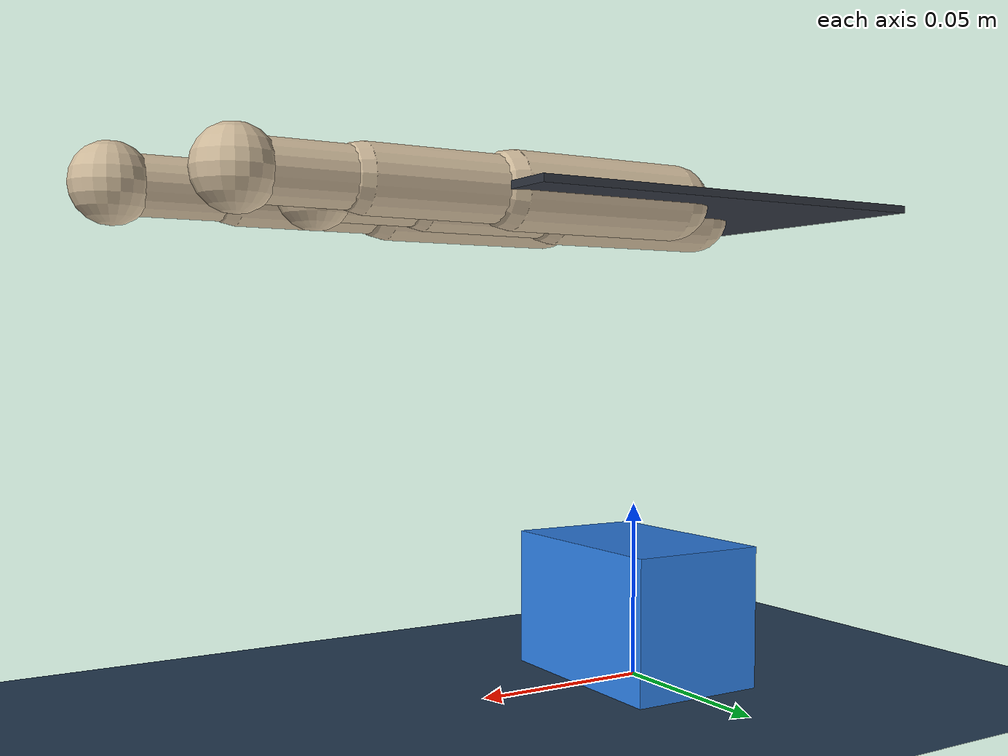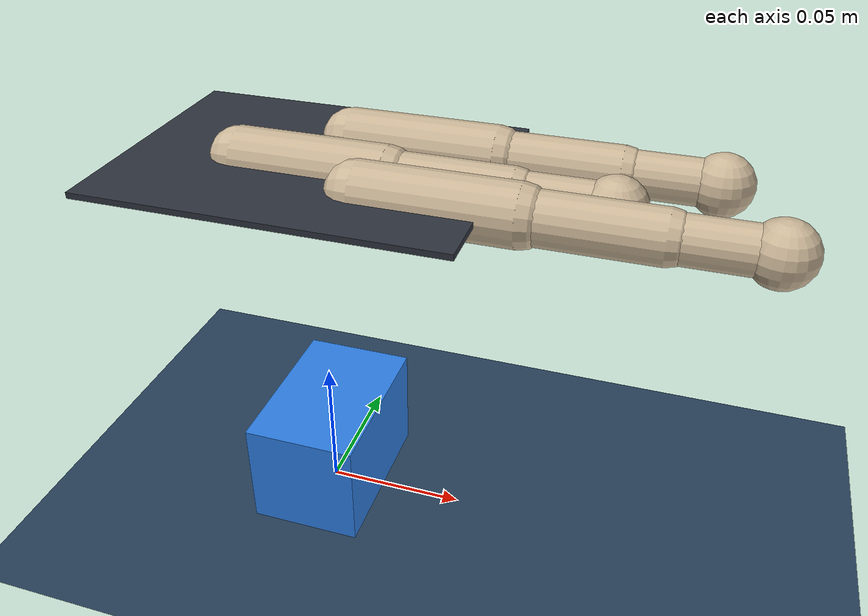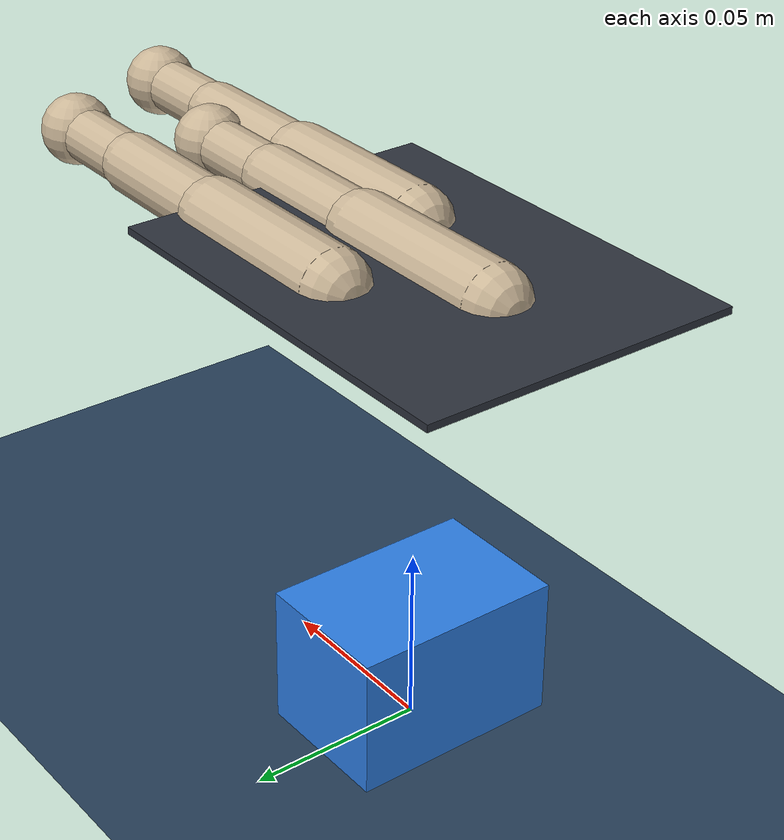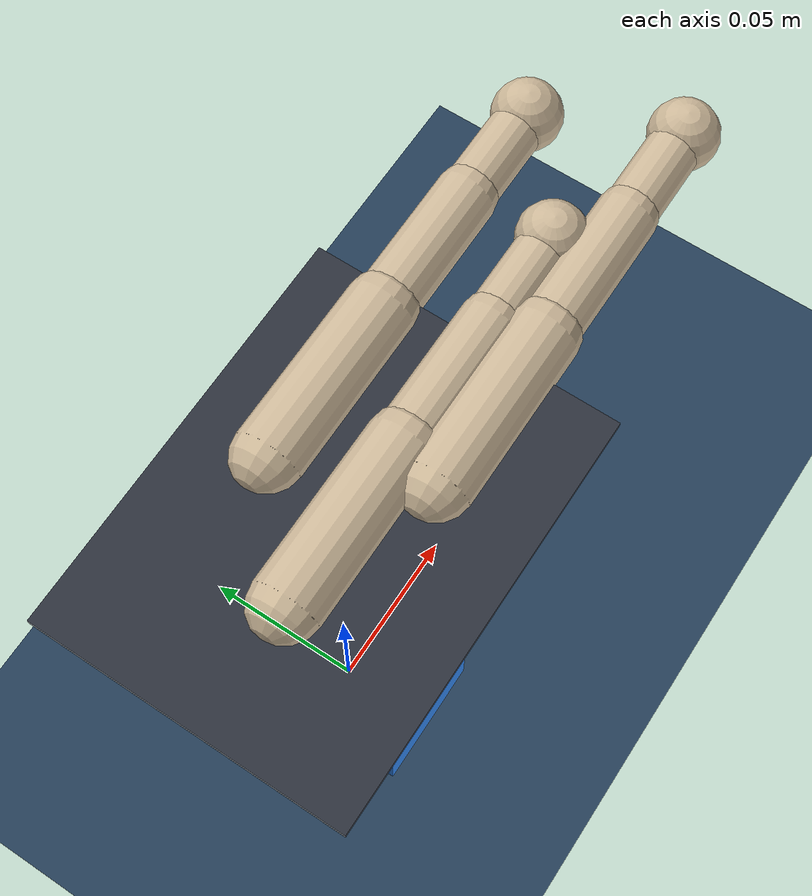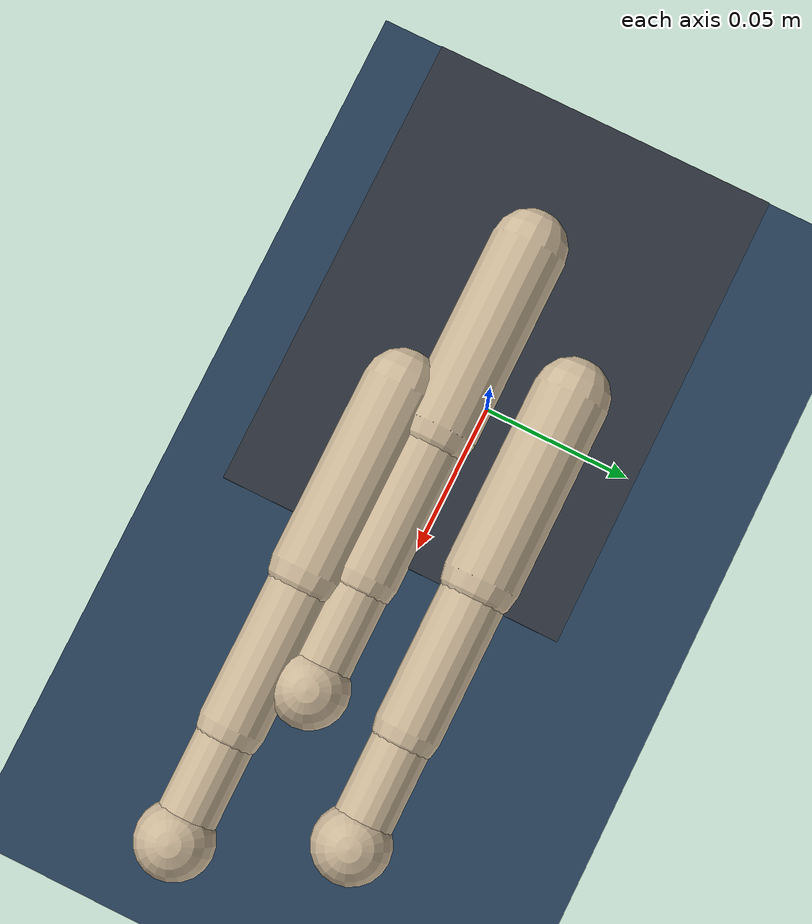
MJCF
<mujoco model="scene_prism2_tp0d0063p0d0247p0d0000_ip0d0049n0d0079p0d0000_mp0d0212p0d0139p0d0013">
  <compiler angle="radian" autolimits="true" />
  <option timestep="0.002" gravity="0 0 -9.81" integrator="implicitfast" />
  <visual>
    <headlight ambient=".4 .4 .4" diffuse=".8 .8 .8" specular="0.1 0.1 0.1" />
    <map znear=".01" />
    <quality shadowsize="2048" />
    <global elevation="-15" />
  </visual>
  <default>
    <geom friction="1.8 0.15 0.01" solref="0.006 1" solimp="0.97 0.995 0.0005" />
    <motor ctrlrange="-1 1" ctrllimited="true" />
    <default class="pose">
      <joint damping="2.0" armature="0.01" />
      <position kp="4000" kv="100" forcerange="-1000 1000" />
    </default>
    <default class="ctrl">
      <joint damping="0.5" armature="0.001" />
      <position kp="30" kv="0.5" gear="1" forcerange="-10 10" ctrlrange="-1 1" />
    </default>
  </default>
  <asset>
    <texture type="skybox" builtin="gradient" rgb1="0.3 0.5 0.7" rgb2="0 0 0" width="512" height="3072" />
    <texture type="2d" name="groundplane" builtin="checker" mark="edge" rgb1="0.2 0.3 0.4" rgb2="0.1 0.2 0.3" markrgb="0.8 0.8 0.8" width="300" height="300" />
    <material name="groundplane" texture="groundplane" texuniform="true" texrepeat="5 5" reflectance="0.2" />
    <texture name="grid" type="2d" builtin="checker" rgb1="0.15 0.15 0.15" rgb2="0.25 0.25 0.25" width="256" height="256" />
    <material name="table_mat" texture="grid" texrepeat="3 3" reflectance="0.2" />
    <material name="palm_mat" rgba="0.18 0.2 0.24 1" />
    <material name="finger_mat" rgba="0.8 0.72 0.6 1" />
    <material name="object_mat" rgba="0.18 0.5 0.9 1" />
  </asset>
  <worldbody>
    <light pos="0 0 1.5" dir="0 0 -1" directional="true" diffuse=".6 .6 .6" specular=".2 .2 .2" />
    <light pos="0.5 0.5 1.0" dir="-1 -1 -1" directional="true" diffuse=".4 .4 .4" specular=".1 .1 .1" />
    <geom name="floor" type="plane" size="1.5 1.5 0.1" material="groundplane" />
    <body name="cube" pos="0.000000 0.000000 0.020000">
      <freejoint />
      <geom type="box" size="0.020000 0.030000 0.020000" density="500" material="object_mat" friction="2.4 0.2 0.02" />
    </body>
    <body gravcomp="1" name="palm_pose" pos="0 0 0.134">
      <joint class="pose" name="palm_px" type="slide" axis="1 0 0" range="-0.20 0.20" />
      <joint class="pose" name="palm_py" type="slide" axis="0 1 0" range="-0.20 0.20" />
      <joint class="pose" name="palm_pz" type="slide" axis="0 0 1" range="-0.15 0.35" />
      <joint class="pose" name="palm_rx" type="hinge" axis="1 0 0" range="-1.57 1.57" />
      <joint class="pose" name="palm_ry" type="hinge" axis="0 1 0" range="-1.57 1.57" />
      <joint class="pose" name="palm_rz" type="hinge" axis="0 0 1" range="-3.14 3.14" />
      <geom type="box" size="0.06 0.045 0.001" material="palm_mat" />
      <body name="thumb_mount" pos="-0.023701 -0.003322 0">
        <inertial pos="0 0 0" mass="0.001" diaginertia="1e-6 1e-6 1e-6" />
        <body name="thumb_yaw_frame">
          <inertial pos="0 0 0" mass="0.001" diaginertia="1e-6 1e-6 1e-6" />
          <joint class="ctrl" name="thumb_yaw" type="hinge" axis="1 0 0" range="-1.1 1.1" />
          <body name="thumb_mcp_frame">
            <joint class="ctrl" name="thumb_mcp" type="hinge" axis="0 1 0" range="0 3.14" />
            <geom type="capsule" fromto="0 0 0 0.05 0 0" size="0.010" material="finger_mat" />
            <body name="thumb_len_frame" pos="0.05 0 0">
              <geom type="capsule" fromto="0 0 0 0.04 0 0" size="0.0085" material="finger_mat" />
              <body name="thumb_pip_frame" pos="0.04 0 0">
                <joint class="ctrl" name="thumb_pip" type="hinge" axis="0 1 0" range="-1.2 0.5" />
                <geom type="capsule" fromto="0 0 0 0.03 0 0" size="0.0075" material="finger_mat" />
                <body name="thumb_tip" pos="0.03 0 0">
                  <geom type="sphere" size="0.010" material="finger_mat" friction="2.4 0.2 0.02" />
                  <geom type="sphere" pos="0 0.004 0" size="0.005" material="finger_mat" friction="2.4 0.2 0.02" />
                  <geom type="sphere" pos="0 -0.004 0" size="0.005" material="finger_mat" friction="2.4 0.2 0.02" />
                </body>
              </body>
            </body>
          </body>
        </body>
      </body>
      <body name="index_mount" pos="0.004865 0.022101 0">
        <inertial pos="0 0 0" mass="0.001" diaginertia="1e-6 1e-6 1e-6" />
        <body name="index_yaw_frame">
          <inertial pos="0 0 0" mass="0.001" diaginertia="1e-6 1e-6 1e-6" />
          <joint class="ctrl" name="index_yaw" type="hinge" axis="1 0 0" range="-1.1 1.1" />
          <body name="index_mcp_frame">
            <joint class="ctrl" name="index_mcp" type="hinge" axis="0 1 0" range="0 2.5" />
            <geom type="capsule" fromto="0 0 0 0.05 0 0" size="0.010" material="finger_mat" />
            <body name="index_len_frame" pos="0.05 0 0">
              <geom type="capsule" fromto="0 0 0 0.04 0 0" size="0.0085" material="finger_mat" />
              <body name="index_pip_frame" pos="0.04 0 0">
                <joint class="ctrl" name="index_pip" type="hinge" axis="0 1 0" range="-1.2 1.57" />
                <geom type="capsule" fromto="0 0 0 0.03 0 0" size="0.0075" material="finger_mat" />
                <body name="index_tip" pos="0.03 0 0">
                  <geom type="sphere" size="0.010" material="finger_mat" friction="2.4 0.2 0.02" />
                  <geom type="sphere" pos="0 0.004 0" size="0.005" material="finger_mat" friction="2.4 0.2 0.02" />
                  <geom type="sphere" pos="0 -0.004 0" size="0.005" material="finger_mat" friction="2.4 0.2 0.02" />
                </body>
              </body>
            </body>
          </body>
        </body>
      </body>
      <body name="middle_mount" pos="0.021239 -0.01609 0">
        <inertial pos="0 0 0" mass="0.001" diaginertia="1e-6 1e-6 1e-6" />
        <body name="middle_yaw_frame">
          <inertial pos="0 0 0" mass="0.001" diaginertia="1e-6 1e-6 1e-6" />
          <joint class="ctrl" name="middle_yaw" type="hinge" axis="1 0 0" range="-1.1 1.1" />
          <body name="middle_mcp_frame">
            <joint class="ctrl" name="middle_mcp" type="hinge" axis="0 1 0" range="0 2.5" />
            <geom type="capsule" fromto="0 0 0 0.05 0 0" size="0.010" material="finger_mat" />
            <body name="middle_len_frame" pos="0.051252 0 0">
              <geom type="capsule" fromto="0 0 0 0.04 0 0" size="0.0085" material="finger_mat" />
              <body name="middle_pip_frame" pos="0.04 0 0">
                <joint class="ctrl" name="middle_pip" type="hinge" axis="0 1 0" range="-1.2 1.57" />
                <geom type="capsule" fromto="0 0 0 0.03 0 0" size="0.0075" material="finger_mat" />
                <body name="middle_tip" pos="0.03 0 0">
                  <geom type="sphere" size="0.010" material="finger_mat" friction="2.4 0.2 0.02" />
                  <geom type="sphere" pos="0 0.004 0" size="0.005" material="finger_mat" friction="2.4 0.2 0.02" />
                  <geom type="sphere" pos="0 -0.004 0" size="0.005" material="finger_mat" friction="2.4 0.2 0.02" />
                </body>
              </body>
            </body>
          </body>
        </body>
      </body>
    </body>
  </worldbody>
  <actuator>
    <position class="pose" name="a_palm_px" joint="palm_px" ctrlrange="-0.20 0.20" />
    <position class="pose" name="a_palm_py" joint="palm_py" ctrlrange="-0.20 0.20" />
    <position class="pose" name="a_palm_pz" joint="palm_pz" ctrlrange="-0.15 0.35" />
    <position class="pose" name="a_palm_rx" joint="palm_rx" ctrlrange="-1.57 1.57" />
    <position class="pose" name="a_palm_ry" joint="palm_ry" ctrlrange="-1.57 1.57" />
    <position class="pose" name="a_palm_rz" joint="palm_rz" ctrlrange="-3.14 3.14" />
    <position class="ctrl" name="a_thumb_yaw" joint="thumb_yaw" ctrlrange="-1.1 1.1" />
    <position class="ctrl" name="a_thumb_mcp" joint="thumb_mcp" ctrlrange="0 3.14" />
    <position class="ctrl" name="a_thumb_pip" joint="thumb_pip" ctrlrange="-1.2 0.5" />
    <position class="ctrl" name="a_index_yaw" joint="index_yaw" ctrlrange="-1.1 1.1" />
    <position class="ctrl" name="a_index_mcp" joint="index_mcp" ctrlrange="0 2.5" />
    <position class="ctrl" name="a_index_pip" joint="index_pip" ctrlrange="-1.2 1.57" />
    <position class="ctrl" name="a_middle_yaw" joint="middle_yaw" ctrlrange="-1.1 1.1" />
    <position class="ctrl" name="a_middle_mcp" joint="middle_mcp" ctrlrange="0 2.5" />
    <position class="ctrl" name="a_middle_pip" joint="middle_pip" ctrlrange="-1.2 1.57" />
  </actuator>
  <keyframe>
    <key name="open" qpos="&#10;        0 0 0.02 1 0 0 0 0.02 0 0 0 0 0 0 2 -0.707 0 1.25 1 0 1.25 1&#10;      " ctrl="&#10;        0.02 0 0 0 0 0 0 2 -0.707 0 1.25 1 0 1.25 1&#10;      " />
    <key name="foundational" qpos="&#10;        0.01186077329 -6.613426455e-05 0.02203879479 0.9958239919 0.01902436173 0.0254317835 0.08559132633 0.01999179168 1.691436944e-05 -0.0003619756635 -7.132721192e-07 -1.516288989e-07 4.094126115e-08 0.0119603552 1.909475339 -1.129062671 -0.07696442872 1.217700186 1.106444962 0.1063565797 1.371240313 0.8955054194&#10;      " ctrl="&#10;        0.02 0 0 0 0 0 0.08263128439 1.300040063 -1.193431779 -0.1454877351 1.438570444 1.151636857 0.1038934258 1.489166588 0.9205659349&#10;      " />
  </keyframe>
</mujoco>
